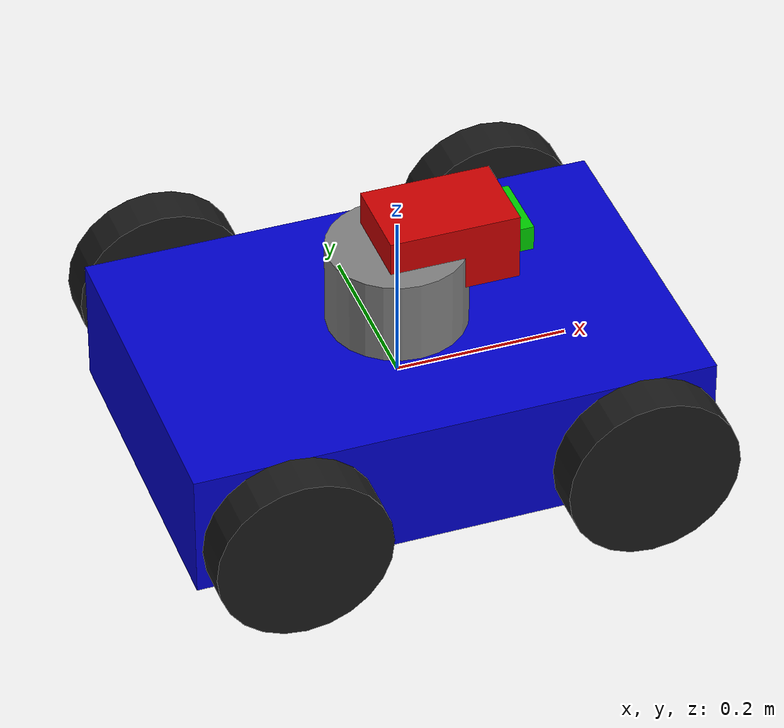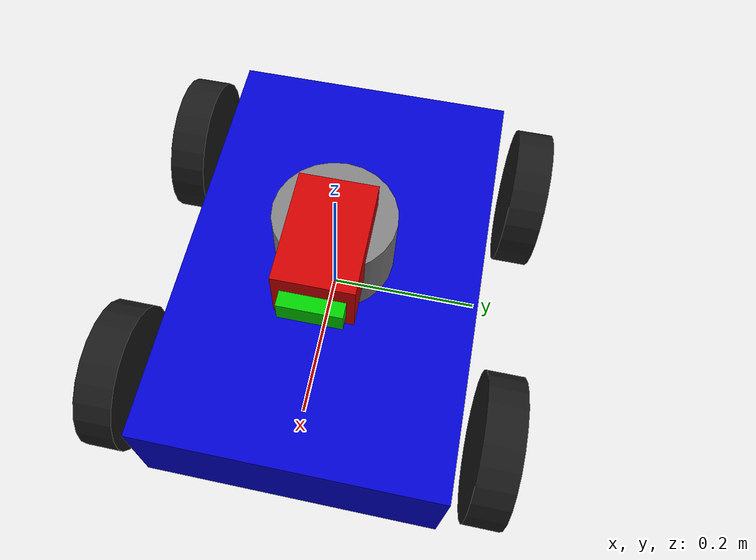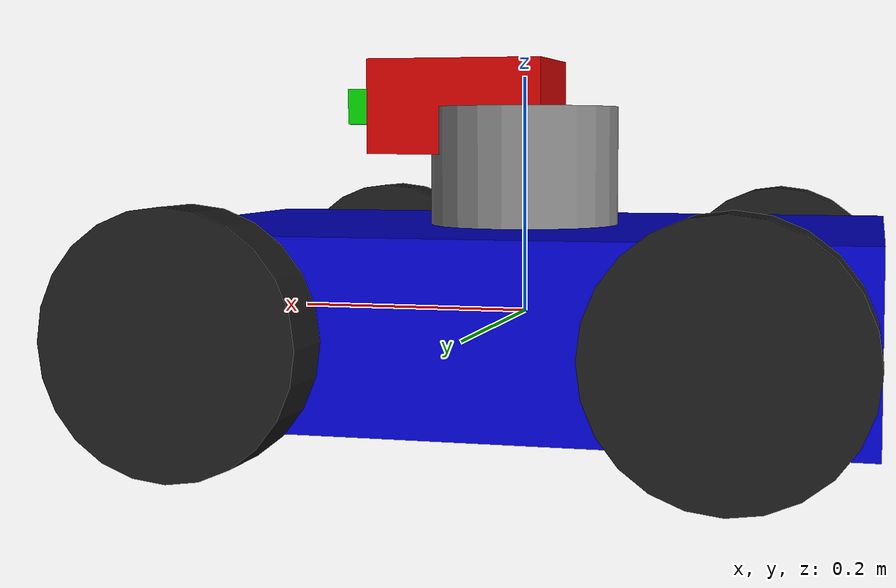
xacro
<?xml version="1.0"?>
<!-- XML声明，必须放在第一行 -->

<robot name="autoaim_car" xmlns:xacro="http://www.ros.org/wiki/xacro">
<!--
  robot标签：整个机器人的根标签
  - name: 机器人名字
  - xmlns:xacro: 声明使用xacro语法（可以用变量、宏等高级功能）
-->

  <!-- ========== 第一部分：定义常量变量 ========== -->
  <!-- 用xacro:property定义变量，后面可以用${变量名}引用 -->

  <xacro:property name="PI" value="3.14159265359"/>
  <!-- 定义π，方便计算角度 -->

  <!-- 底盘尺寸 -->
  <xacro:property name="chassis_length" value="0.6"/>  <!-- 底盘长度：0.6米 -->
  <xacro:property name="chassis_width" value="0.4"/>   <!-- 底盘宽度：0.4米 -->
  <xacro:property name="chassis_height" value="0.15"/> <!-- 底盘高度：0.15米 -->
  <xacro:property name="chassis_mass" value="10.0"/>   <!-- 底盘质量：10kg -->

  <!-- 轮子尺寸 -->
  <xacro:property name="wheel_radius" value="0.1"/>    <!-- 轮子半径：0.1米 -->
  <xacro:property name="wheel_width" value="0.05"/>    <!-- 轮子宽度：0.05米 -->
  <xacro:property name="wheel_mass" value="0.5"/>      <!-- 轮子质量：0.5kg -->
  <xacro:property name="wheel_separation" value="0.5"/><!-- 左右轮间距：0.5米 -->
  <xacro:property name="wheel_base" value="0.4"/>      <!-- 前后轮轴距：0.4米 -->

  <!-- ========== 第二部分：底盘（base_link） ========== -->
  <link name="base_link">
  <!--
    link标签：定义机器人的一个刚体部分
    name="base_link" 是ROS的惯例，表示机器人的主体/底盘
  -->

    <!-- 视觉外观（你在Gazebo/RViz里看到的样子） -->
    <visual>
      <geometry>
        <!-- 几何形状：长方体 -->
        <box size="${chassis_length} ${chassis_width} ${chassis_height}"/>
        <!-- size="长 宽 高"，用${变量名}引用之前定义的变量 -->
      </geometry>
      <origin xyz="0 0 0" rpy="0 0 0"/>
      <!--
        origin: 相对于link坐标系的偏移
        xyz="x y z": 位置偏移（米）
        rpy="roll pitch yaw": 姿态（弧度）
        这里都是0，表示几何中心就在link坐标原点
      -->
      <material name="blue">
        <!-- 材质/颜色 -->
        <color rgba="0 0 0.8 1"/>
        <!-- rgba="红 绿 蓝 透明度"，取值0-1，这里是蓝色 -->
      </material>
    </visual>

    <!-- 碰撞体（物理引擎用来计算碰撞） -->
    <collision>
      <geometry>
        <box size="${chassis_length} ${chassis_width} ${chassis_height}"/>
        <!-- 通常和visual一样，简化计算可以用更简单的形状 -->
      </geometry>
      <origin xyz="0 0 0" rpy="0 0 0"/>
    </collision>

    <!-- 惯性参数（物理模拟必须，影响加速度、旋转等） -->
    <inertial>
      <mass value="${chassis_mass}"/>
      <!-- 质量（kg） -->
      <origin xyz="0 0 0" rpy="0 0 0"/>
      <!-- 质心位置 -->
      <inertia ixx="0.1" ixy="0.0" ixz="0.0"
               iyy="0.1" iyz="0.0" izz="0.1"/>
      <!--
        惯性矩阵（kg·m²）
        对于长方体，可以用公式计算：
        ixx = m/12 * (h² + w²)
        iyy = m/12 * (l² + h²)
        izz = m/12 * (l² + w²)
        简单场景用近似值也可以
      -->
    </inertial>
  </link>

  <!-- ========== 第三部分：轮子宏定义 ========== -->
  <!--
    xacro:macro 宏定义：避免重复代码
    类似编程里的函数，定义一次，调用多次
  -->
  <xacro:macro name="wheel" params="prefix suffix reflect_x reflect_y">
  <!--
    macro name="宏名字" params="参数列表"
    params里的每个参数用空格分隔
    调用时传入不同参数，生成不同的轮子
  -->

    <link name="${prefix}_${suffix}_wheel">
    <!--
      用${}引用参数
      例如：prefix="front", suffix="left"
      生成的link名字是 "front_left_wheel"
    -->

      <visual>
        <geometry>
          <cylinder radius="${wheel_radius}" length="${wheel_width}"/>
          <!-- 圆柱体：半径和长度 -->
        </geometry>
        <origin xyz="0 0 0" rpy="${PI/2} 0 0"/>
        <!--
          rpy="${PI/2} 0 0" 表示绕x轴旋转90度
          因为cylinder默认沿z轴，我们要让它沿y轴（横着当轮子）
        -->
        <material name="black">
          <color rgba="0.1 0.1 0.1 1"/>
          <!-- 深灰色（接近黑色） -->
        </material>
      </visual>

      <collision>
        <geometry>
          <cylinder radius="${wheel_radius}" length="${wheel_width}"/>
        </geometry>
        <origin xyz="0 0 0" rpy="${PI/2} 0 0"/>
      </collision>

      <inertial>
        <mass value="${wheel_mass}"/>
        <origin xyz="0 0 0" rpy="${PI/2} 0 0"/>
        <inertia ixx="0.01" ixy="0" ixz="0"
                 iyy="0.01" iyz="0" izz="0.01"/>
        <!-- 圆柱体惯性矩：I = m*r²/2 (轴向), I = m*(3r²+h²)/12 (径向) -->
      </inertial>
    </link>

    <!-- 轮子和底盘的连接关节 -->
    <joint name="${prefix}_${suffix}_wheel_joint" type="continuous">
    <!--
      joint标签：连接两个link
      name: 关节名字
      type: 关节类型
        - fixed: 固定不动
        - revolute: 有限角度旋转
        - continuous: 无限旋转（轮子用这个）
        - prismatic: 直线滑动
    -->

      <parent link="base_link"/>
      <!-- 父link：底盘 -->
      <child link="${prefix}_${suffix}_wheel"/>
      <!-- 子link：这个轮子 -->

      <origin xyz="${reflect_x * wheel_base/2} ${reflect_y * wheel_separation/2} 0" rpy="0 0 0"/>

      <axis xyz="0 1 0"/>
      <!--
        旋转轴方向
        xyz="0 1 0" 表示绕y轴旋转（前进方向是x轴）
      -->

      <dynamics damping="0.1" friction="0.1"/>
      <!--
        动力学参数：
        damping: 阻尼（类似摩擦，让轮子不会无限转）
        friction: 摩擦力
      -->
    </joint>

    <!-- Gazebo专用：设置轮子的物理属性 -->
    <gazebo reference="${prefix}_${suffix}_wheel">
    <!--
      gazebo标签：Gazebo仿真器的特殊设置
      reference: 指定对哪个link生效
    -->

      <mu1>1.0</mu1>
      <mu2>1.0</mu2>
      <!--
        mu1, mu2: 摩擦系数（0-1之间）
        1.0表示高摩擦，轮子不容易打滑
      -->

      <kp>1000000.0</kp>
      <kd>100.0</kd>
      <!--
        kp: 接触刚度（contact stiffness）
        kd: 接触阻尼（contact damping）
        越大越"硬"，碰撞时弹性越小
      -->

      <material>Gazebo/Black</material>
      <!-- Gazebo预定义的材质/颜色 -->
    </gazebo>

  </xacro:macro>
  <!-- 宏定义结束 -->

  <!-- ========== 第四部分：调用宏生成四个轮子 ========== -->
  <!--
    xacro:轮子宏名 参数1="值1" 参数2="值2" ...
  -->
  <xacro:wheel prefix="front" suffix="left"  reflect_x="1"  reflect_y="1"/>
  <!-- 前左轮：在底盘前面(+x)、左边(+y) -->

  <xacro:wheel prefix="front" suffix="right" reflect_x="1"  reflect_y="-1"/>
  <!-- 前右轮：在底盘前面(+x)、右边(-y) -->

  <xacro:wheel prefix="rear"  suffix="left"  reflect_x="-1" reflect_y="1"/>
  <!-- 后左轮：在底盘后面(-x)、左边(+y) -->

  <xacro:wheel prefix="rear"  suffix="right" reflect_x="-1" reflect_y="-1"/>
  <!-- 后右轮：在底盘后面(-x)、右边(-y) -->

  <!-- ========== 第五部分：云台Yaw轴（水平旋转） ========== -->
  <link name="gimbal_yaw_base">
  <!-- 云台的底座，负责水平旋转 -->

    <visual>
      <geometry>
        <cylinder radius="0.08" length="0.1"/>
        <!-- 小圆柱作为云台底座 -->
      </geometry>
      <origin xyz="0 0 0" rpy="0 0 0"/>
      <material name="gray">
        <color rgba="0.5 0.5 0.5 1"/>
        <!-- 灰色 -->
      </material>
    </visual>

    <collision>
      <geometry>
        <cylinder radius="0.08" length="0.1"/>
      </geometry>
      <origin xyz="0 0 0" rpy="0 0 0"/>
    </collision>

    <inertial>
      <mass value="0.5"/>
      <origin xyz="0 0 0" rpy="0 0 0"/>
      <inertia ixx="0.001" ixy="0" ixz="0"
               iyy="0.001" iyz="0" izz="0.001"/>
    </inertial>
  </link>

  <joint name="gimbal_yaw_joint" type="revolute">
  <!--
    revolute: 有限角度旋转（需要定义上下限）
    这是云台的yaw轴，控制水平转动
  -->

    <parent link="base_link"/>
    <!-- 父link：底盘 -->

    <child link="gimbal_yaw_base"/>
    <!-- 子link：云台底座 -->

    <origin xyz="0 0 ${chassis_height/2 + 0.05}" rpy="0 0 0"/>
    <!--
      安装在底盘上方
      z坐标 = 底盘高度的一半 + 0.05米（稍微抬高一点）
    -->

    <axis xyz="0 0 1"/>
    <!--
      绕z轴旋转（竖直方向）
      这样云台可以水平左右转
    -->

    <limit lower="${-PI}" upper="${PI}" effort="10.0" velocity="2.0"/>
    <!--
      limit: revolute类型必须定义
      lower/upper: 角度下限/上限（弧度），-π到π表示可以转整圈
      effort: 最大力矩（N·m）
      velocity: 最大角速度（rad/s）
    -->

    <dynamics damping="0.7" friction="0.0"/>
  </joint>

  <!-- ========== 第六部分：云台Pitch轴（俯仰） ========== -->
  <link name="gimbal_pitch_link">
  <!-- 云台的俯仰部分 -->

    <visual>
      <geometry>
        <box size="0.15 0.1 0.08"/>
        <!-- 长方体，作为云台的"头部" -->
      </geometry>
      <origin xyz="0 0 0" rpy="0 0 0"/>
      <material name="red">
        <color rgba="0.8 0 0 1"/>
        <!-- 红色，方便区分 -->
      </material>
    </visual>

    <collision>
      <geometry>
        <box size="0.15 0.1 0.08"/>
      </geometry>
      <origin xyz="0 0 0" rpy="0 0 0"/>
    </collision>

    <inertial>
      <mass value="0.3"/>
      <origin xyz="0 0 0" rpy="0 0 0"/>
      <inertia ixx="0.0005" ixy="0" ixz="0"
               iyy="0.0008" iyz="0" izz="0.0005"/>
    </inertial>
  </link>

  <joint name="gimbal_pitch_joint" type="revolute">
  <!-- 云台的pitch轴，控制上下俯仰 -->

    <parent link="gimbal_yaw_base"/>
    <!-- 父link：云台底座（yaw轴的输出） -->

    <child link="gimbal_pitch_link"/>
    <!-- 子link：云台俯仰部分 -->

    <origin xyz="0.05 0 0.05" rpy="0 0 0"/>
    <!--
      稍微往前(+x)、往上(+z)
      让相机有个合适的位置
    -->

    <axis xyz="0 1 0"/>
    <!--
      绕y轴旋转（左右方向）
      这样云台可以上下俯仰
    -->

    <limit lower="${-PI/4}" upper="${PI/4}" effort="10.0" velocity="2.0"/>
    <!--
      -45度到+45度（-π/4 到 π/4）
      限制俯仰角度，避免碰到底盘
    -->

    <dynamics damping="0.7" friction="0.0"/>
  </joint>

  <!-- ========== 第七部分：相机 ========== -->
  <link name="camera_link">
  <!-- 相机link，安装在云台上 -->

    <visual>
      <geometry>
        <box size="0.03 0.08 0.03"/>
        <!-- 小长方体表示相机 -->
      </geometry>
      <origin xyz="0 0 0" rpy="0 0 0"/>
      <material name="green">
        <color rgba="0 0.8 0 1"/>
        <!-- 绿色 -->
      </material>
    </visual>

    <collision>
      <geometry>
        <box size="0.03 0.08 0.03"/>
      </geometry>
      <origin xyz="0 0 0" rpy="0 0 0"/>
    </collision>

    <inertial>
      <mass value="0.1"/>
      <origin xyz="0 0 0" rpy="0 0 0"/>
      <inertia ixx="0.0001" ixy="0" ixz="0"
               iyy="0.0001" iyz="0" izz="0.0001"/>
    </inertial>
  </link>

  <joint name="camera_joint" type="fixed">
  <!--
    fixed: 固定连接，不能动
    相机固定在云台俯仰部分上
  -->

    <parent link="gimbal_pitch_link"/>
    <child link="camera_link"/>
    <origin xyz="0.08 0 0" rpy="0 0 0"/>
    <!-- 往前伸出0.08米，让相机在云台前方 -->
  </joint>

  <!-- ========== 第八部分：Gazebo插件 - 差速驱动 ========== -->
  <gazebo>
    <plugin name="differential_drive_controller" filename="libgazebo_ros_diff_drive.so">
    <!--
      插件名：libgazebo_ros_diff_drive.so
      功能：控制差速驱动机器人（两轮独立控制）
    -->

      <update_rate>50</update_rate>
      <!-- 更新频率：50 Hz -->

      <left_joint>front_left_wheel_joint</left_joint>
      <right_joint>front_right_wheel_joint</right_joint>
      <!--
        指定左右轮的joint名字
        插件会控制这两个joint的转速
        (这里用前轮驱动，也可以用后轮)
      -->

      <wheel_separation>${wheel_separation}</wheel_separation>
      <!-- 左右轮间距（米），影响转弯半径 -->

      <wheel_diameter>${2*wheel_radius}</wheel_diameter>
      <!-- 轮子直径（米），影响速度换算 -->

      <max_wheel_torque>20</max_wheel_torque>
      <!-- 最大扭矩（N·m） -->

      <max_wheel_acceleration>1.0</max_wheel_acceleration>
      <!-- 最大加速度 -->

      <command_topic>cmd_vel</command_topic>
      <!--
        订阅的topic名字
        你的C++代码发布 geometry_msgs/Twist 到这个topic
        插件收到后会控制轮子转动
      -->

      <publish_odom>true</publish_odom>
      <!-- 是否发布里程计信息 -->

      <publish_odom_tf>true</publish_odom_tf>
      <!-- 是否发布odom→base_link的TF变换 -->

      <publish_wheel_tf>false</publish_wheel_tf>
      <!-- 是否发布轮子的TF（一般不需要） -->

      <odometry_topic>odom</odometry_topic>
      <!-- 发布里程计的topic名字 -->

      <odometry_frame>odom</odometry_frame>
      <!-- 里程计坐标系名字 -->

      <robot_base_frame>base_link</robot_base_frame>
      <!-- 机器人底盘坐标系名字 -->
    </plugin>
  </gazebo>

  <!-- ========== 第九部分：Gazebo插件 - 关节状态发布 ========== -->
  <gazebo>
    <plugin name="joint_state_publisher" filename="libgazebo_ros_joint_state_publisher.so">
    <!--
      插件名：libgazebo_ros_joint_state_publisher.so
      功能：发布关节的当前状态（角度、速度等）
    -->

      <update_rate>50</update_rate>

      <joint_name>gimbal_yaw_joint</joint_name>
      <joint_name>gimbal_pitch_joint</joint_name>
      <!--
        指定要发布的关节
        插件会发布这些关节的实时状态到 /joint_states topic
        类型：sensor_msgs/JointState
      -->
    </plugin>
  </gazebo>

  <!-- ========== 第十部分：Gazebo插件 - 相机传感器 ========== -->
  <gazebo reference="camera_link">
  <!--
    这个gazebo标签指定作用于camera_link
    在这个link上添加传感器
  -->

    <sensor type="camera" name="camera_sensor">
    <!--
      sensor type="camera": 相机传感器
      name: 传感器名字
    -->

      <update_rate>30.0</update_rate>
      <!-- 相机帧率：30 FPS -->

      <camera name="head">
        <horizontal_fov>1.3962634</horizontal_fov>
        <!--
          水平视野角（弧度）
          1.3962634 rad ≈ 80度
        -->

        <image>
          <width>640</width>
          <height>480</height>
          <format>R8G8B8</format>
          <!-- 图像格式：RGB，每个通道8位 -->
        </image>

        <clip>
          <near>0.02</near>
          <far>300</far>
          <!--
            渲染距离：
            near: 最近0.02米
            far: 最远300米
            超出范围的物体不会被渲染
          -->
        </clip>

        <noise>
          <type>gaussian</type>
          <mean>0.0</mean>
          <stddev>0.007</stddev>
          <!--
            添加高斯噪声，模拟真实相机
            可选，更真实但会影响性能
          -->
        </noise>
      </camera>

      <plugin name="camera_controller" filename="libgazebo_ros_camera.so">
      <!--
        插件：libgazebo_ros_camera.so
        功能：把Gazebo相机数据发布到ROS topic
      -->

        <alwaysOn>true</alwaysOn>
        <!-- 相机一直开启 -->

        <updateRate>30.0</updateRate>

        <cameraName>camera</cameraName>
        <!-- topic前缀：/camera/... -->

        <imageTopicName>image_raw</imageTopicName>
        <!--
          发布图像的topic: /camera/image_raw
          消息类型: sensor_msgs/Image
        -->

        <cameraInfoTopicName>camera_info</cameraInfoTopicName>
        <!--
          发布相机参数的topic: /camera/camera_info
          包含相机内参、畸变系数等
        -->

        <frameName>camera_link</frameName>
        <!-- TF坐标系名字 -->

        <hackBaseline>0.07</hackBaseline>
        <!-- 仅用于双目相机，单目忽略 -->

        <distortionK1>0.0</distortionK1>
        <distortionK2>0.0</distortionK2>
        <distortionK3>0.0</distortionK3>
        <distortionT1>0.0</distortionT1>
        <distortionT2>0.0</distortionT2>
        <!--
          畸变参数，模拟镜头畸变
          0表示无畸变（理想相机）
        -->
      </plugin>
    </sensor>
  </gazebo>

  <!-- ========== 第十一部分：Gazebo材质颜色 ========== -->
  <!--
    前面在URDF里定义的颜色只在RViz里显示
    在Gazebo里需要用Gazebo专用的材质
  -->
  <gazebo reference="base_link">
    <material>Gazebo/Blue</material>
  </gazebo>

  <gazebo reference="gimbal_yaw_base">
    <material>Gazebo/Grey</material>
  </gazebo>

  <gazebo reference="gimbal_pitch_link">
    <material>Gazebo/Red</material>
  </gazebo>

  <gazebo reference="camera_link">
    <material>Gazebo/Green</material>
  </gazebo>

  <!--
    Gazebo预定义材质：
    Gazebo/Red, Gazebo/Blue, Gazebo/Green, Gazebo/Yellow,
    Gazebo/Black, Gazebo/Grey, Gazebo/White, Gazebo/Wood, 等等
  -->

</robot>
<!-- xacro文件结束 -->
